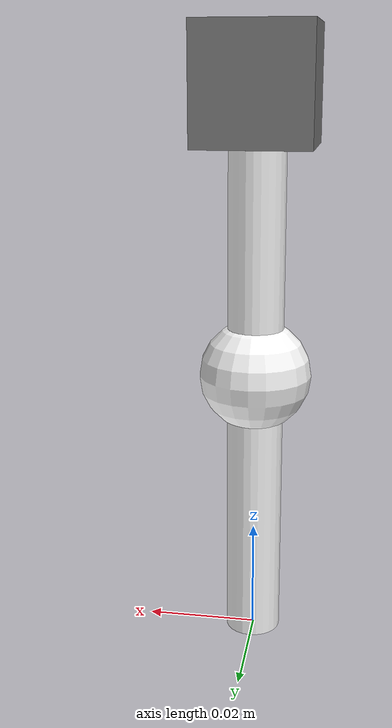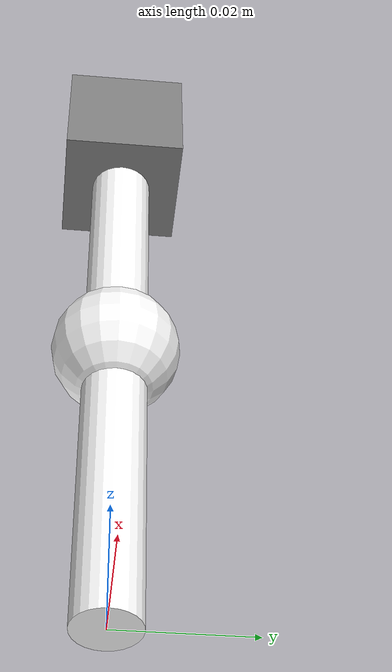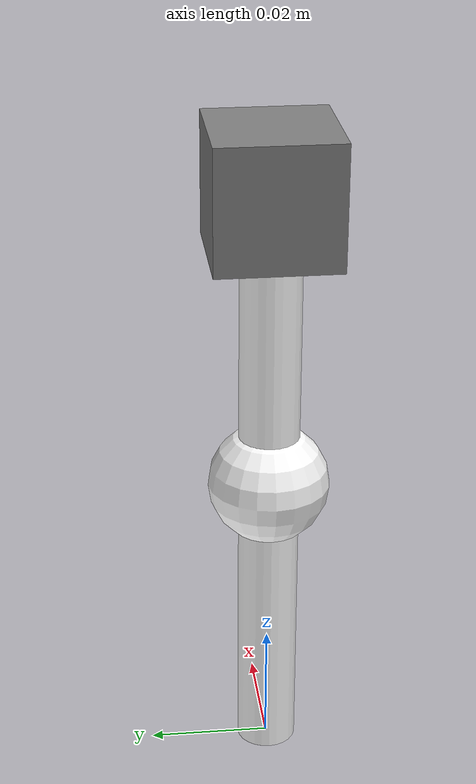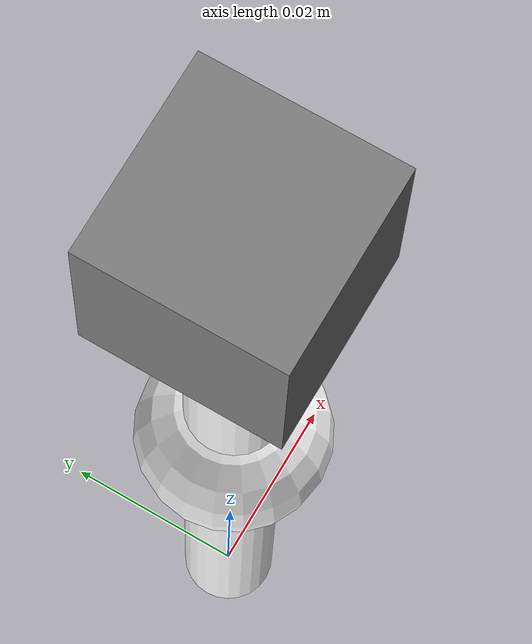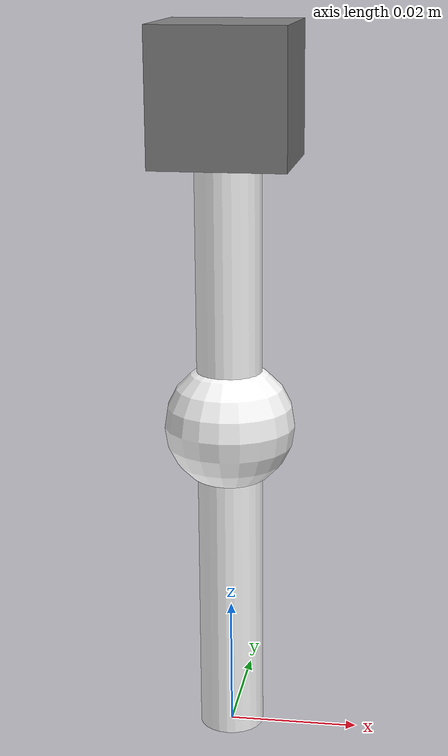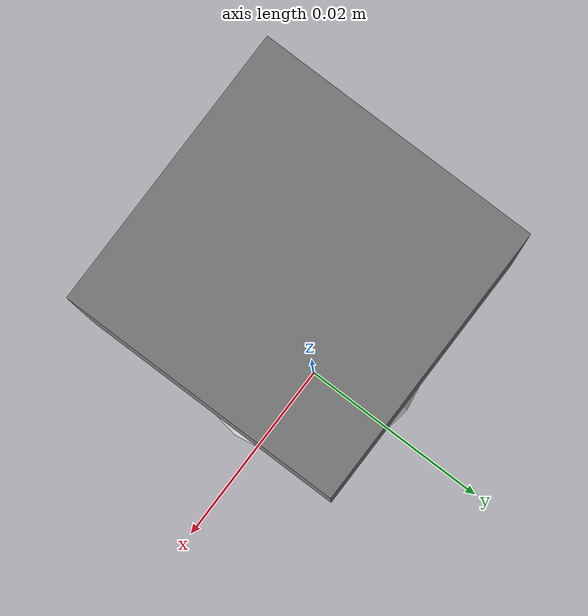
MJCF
<mujoco model="double_pendulum">
    <visual>
        <global azimuth="180" />
    </visual>

    <default>
        <default class="robot">
            <default class="motor">
                <joint />
                <motor />
            </default>
            <default class="visual">

                <geom material="visualgeom" contype="0" conaffinity="0" group="2" />
            </default>
            <default class="collision">
                <geom material="collision_material" condim="3" contype="0" conaffinity="1"
                    priority="1" group="1" solref="0.005 1" solimp="0.99 0.999 1e-05"
                    friction="1 0.01 0.01" />
            </default>
        </default>
    </default>

    <compiler angle="radian" />

    <asset>
        <material name="gray" rgba="0.5 0.5 0.5 1" />
        <material name="default_material" rgba="1 1 1 1" />
        <material name="collision_material" rgba="1.0 0.28 0.1 1" />
    </asset>

    <worldbody>
        <body name="base_link" pos="0.00000000 0.00000000 0.10000000" quat="1 0 0 0"
            childclass="robot">
            <geom name="base_link_visual" pos="0 0 0" quat="1 0 0 0" material="gray" type="box"
                size="0.01 0.01 0.01" class="visual" />
            <body name="joint1_sphere" pos="0 0 0" quat="1.0 0.0 0.0 0.0">
                <joint name="joint1" type="hinge" ref="0.0" class="motor" range="-10000 10000"
                    axis="1 0 0" />
                <geom name="joint1_sphere_visual" pos="0 0 0" quat="1 0 0 0"
                    material="default_material" type="sphere" size="0.01" class="visual" />
                <body name="link1" pos="0 0 0" quat="1 0 0 0">
                    <inertial pos="0 0 -0.05" quat="1.0 0.0 0.0 0.0" mass="0.10548177618443695"
                        diaginertia="0.00046166221821039165 0.00046166221821039165 0.00046166221821039165" />
                    <geom name="link1_visual" pos="0 0 -0.025" quat="1.0 0.0 0.0 0.0"
                        material="default_material" type="cylinder" size="0.005 0.025"
                        class="visual" />
                    <body name="joint2_sphere" pos="0 0 -0.05" quat="1.0 0.0 0.0 0.0">
                        <joint name="joint2" type="hinge" ref="0.0" class="motor"
                            range="-10000 10000"
                            axis="1 0 0" />
                        <geom name="joint2_sphere_visual" pos="0 0 0" quat="1 0 0 0"
                            material="default_material" type="sphere" size="0.01" class="visual" />
                        <body name="link2" pos="0 0 0" quat="1 0 0 0">
                            <inertial pos="0 0 -0.03670036749567022" quat="1.0 0.0 0.0 0.0"
                                mass="0.07619744360415454"
                                diaginertia="0.00023702395072092597 0.00023702395072092597 0.00023702395072092597" />
                            <geom name="link2_visual" pos="0 0 -0.025" quat="1.0 0.0 0.0 0.0"
                                material="default_material" type="cylinder" size="0.005 0.025"
                                class="visual" />
                        </body>
                    </body>
                </body>
            </body>
            <site name="base_link_site" pos="0 0 0" quat="1 0 0 0" />
            <camera name="front_camera" mode="track" fovy="90.0"
                quat="0 0 0 1"
                pos="0.0 2.0 0.5" />
            <camera name="side_camera" mode="track" fovy="90.0"
                quat="-0.5 -0.4999999999999999 0.5 0.5000000000000001" pos="-2.0 0.0 0.5" />
        </body>
    </worldbody>

    <actuator>
        <motor name="joint1_ctrl" joint="joint1" class="motor" forcerange="-0.15 0.15" />
        <motor name="joint2_ctrl" joint="joint2" class="motor" forcerange="-0.15 0.15" />
    </actuator>

    <sensor>
        <framepos name="base_link_site_pos" objtype="site" objname="base_link_site" />
        <framequat name="base_link_site_quat" objtype="site" objname="base_link_site" />
        <framelinvel name="base_link_site_linvel" objtype="site" objname="base_link_site" />
        <frameangvel name="base_link_site_angvel" objtype="site" objname="base_link_site" />
        <velocimeter name="base_link_site_vel" site="base_link_site" />
    </sensor>
</mujoco>
